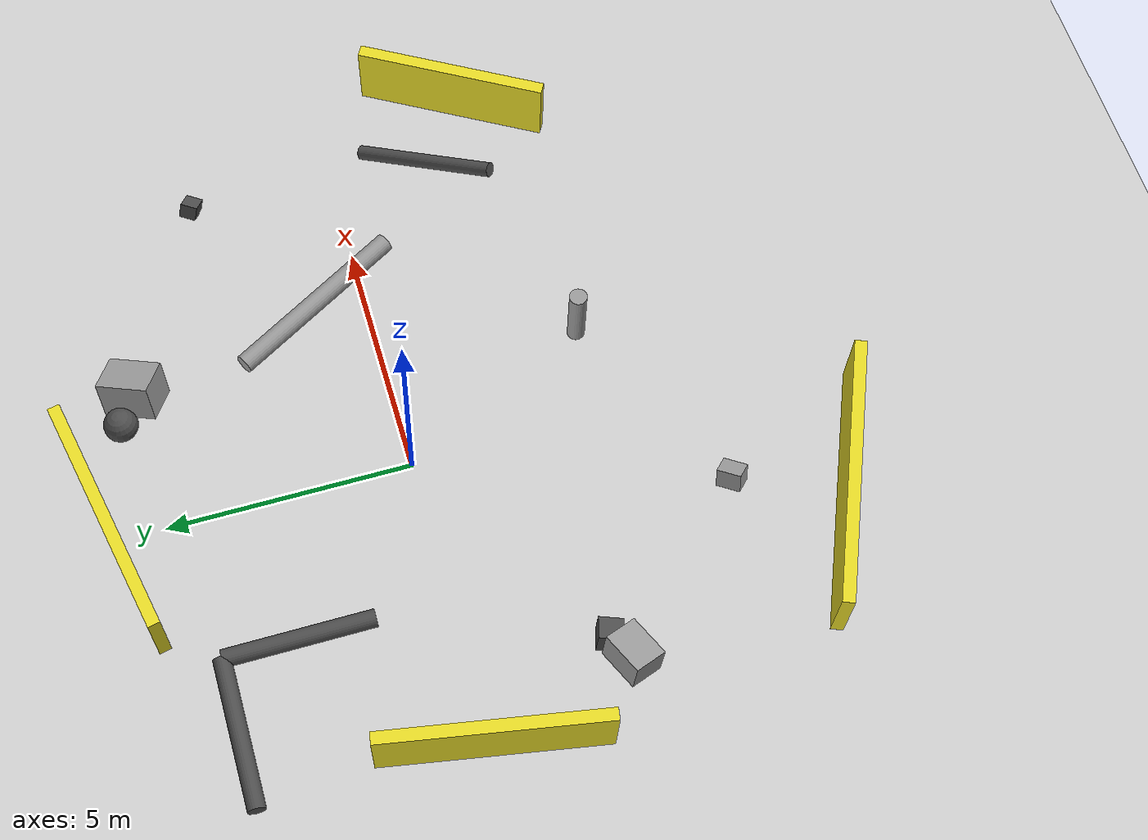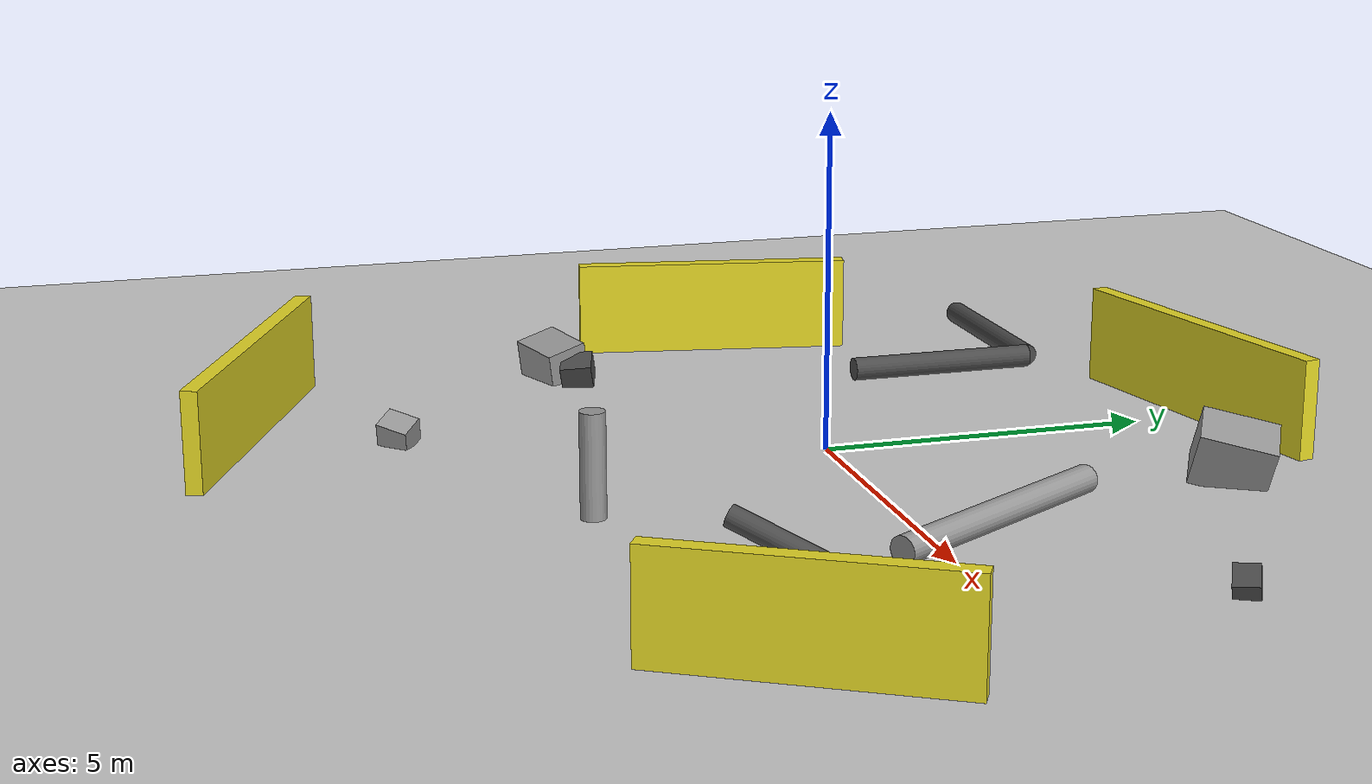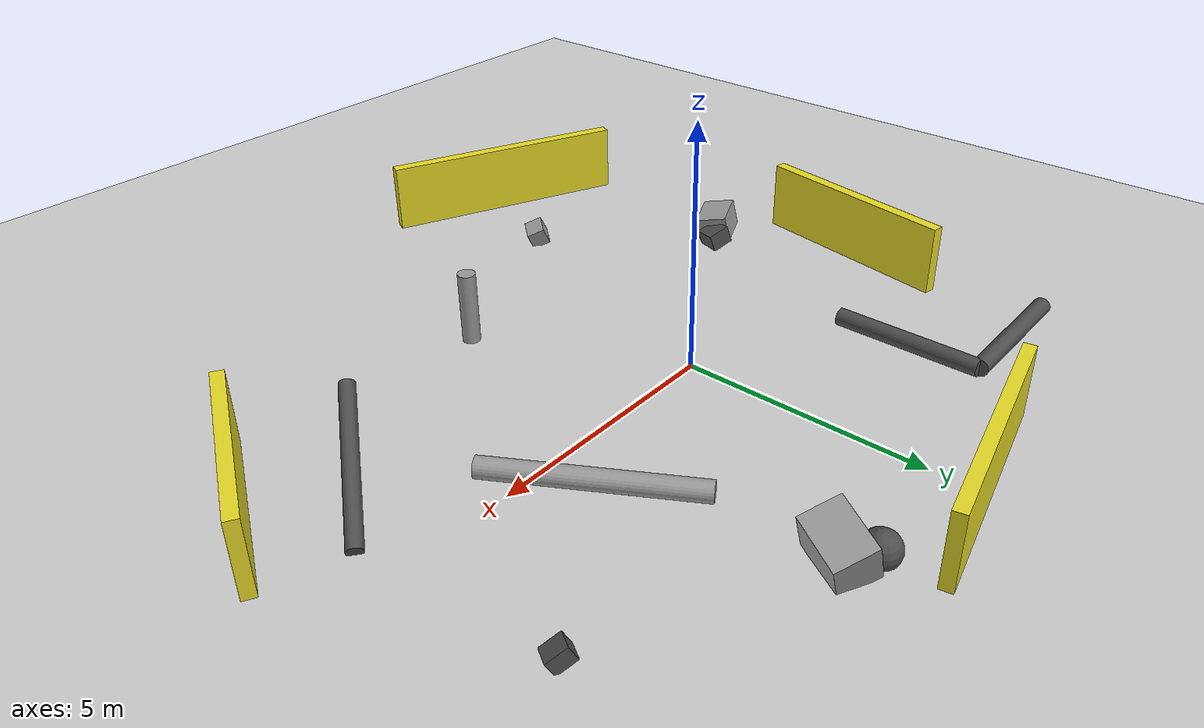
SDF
<?xml version="1.0"?>
<sdf version="1.6">
  <world name="mps_world1">

    <physics type="ode">
      <real_time_update_rate>1000</real_time_update_rate>
      <max_step_size>0.001</max_step_size>
      <real_time_factor>1</real_time_factor>
      <ode>
        <solver>
          <type>quick</type>
          <iters>150</iters>
          <precon_iters>0</precon_iters>
          <sor>1.400000</sor>
        </solver>
        <constraints>
          <cfm>0.00001</cfm>
          <erp>0.2</erp>
          <contact_max_correcting_vel>2000</contact_max_correcting_vel>
          <contact_surface_layer>0.01</contact_surface_layer>
        </constraints>
      </ode>
    </physics>

    <plugin name="gazebo_ros_state" filename="libgazebo_ros_state.so">
      <ros>
        <namespace>/gazebo</namespace>
      </ros>
      <update_rate>50.0</update_rate>
    </plugin>

    <include>
      <uri>model://sun</uri>
    </include>
    <include>
      <uri>model://ground_plane</uri>
    </include>

    <!-- ══════════════════════════════════════════════════════════
         PIPES — cylinders at varied angles
         ══════════════════════════════════════════════════════════ -->

    <!-- Long pipe, flat on ground, angled 30° -->
    <model name="pipe_1">
      <static>true</static>
      <pose>4 1 0.25 1.5708 0 0.5236</pose>
      <link name="link">
        <collision name="col"><geometry><cylinder><radius>0.2</radius><length>4.0</length></cylinder></geometry></collision>
        <visual name="vis"><geometry><cylinder><radius>0.2</radius><length>4.0</length></cylinder></geometry>
          <material><script><uri>file://media/materials/scripts/gazebo.material</uri><name>Gazebo/Grey</name></script></material>
        </visual>
      </link>
    </model>

    <!-- Pipe crossing at a steep angle, partially raised -->
    <model name="pipe_2">
      <static>true</static>
      <pose>6.5 -2 0.6 1.2 0.3 -0.7854</pose>
      <link name="link">
        <collision name="col"><geometry><cylinder><radius>0.15</radius><length>3.2</length></cylinder></geometry></collision>
        <visual name="vis"><geometry><cylinder><radius>0.15</radius><length>3.2</length></cylinder></geometry>
          <material><script><uri>file://media/materials/scripts/gazebo.material</uri><name>Gazebo/DarkGrey</name></script></material>
        </visual>
      </link>
    </model>

    <!-- Short vertical pipe stub -->
    <model name="pipe_3">
      <static>true</static>
      <pose>2 -4 0.75 0 0 0</pose>
      <link name="link">
        <collision name="col"><geometry><cylinder><radius>0.18</radius><length>1.5</length></cylinder></geometry></collision>
        <visual name="vis"><geometry><cylinder><radius>0.18</radius><length>1.5</length></cylinder></geometry>
          <material><script><uri>file://media/materials/scripts/gazebo.material</uri><name>Gazebo/Grey</name></script></material>
        </visual>
      </link>
    </model>

    <!-- Pipe elbow-like pair, perpendicular junction -->
    <model name="pipe_4a">
      <static>true</static>
      <pose>-3 3 0.3 1.5708 0 0</pose>
      <link name="link">
        <collision name="col"><geometry><cylinder><radius>0.18</radius><length>3.0</length></cylinder></geometry></collision>
        <visual name="vis"><geometry><cylinder><radius>0.18</radius><length>3.0</length></cylinder></geometry>
          <material><script><uri>file://media/materials/scripts/gazebo.material</uri><name>Gazebo/DarkGrey</name></script></material>
        </visual>
      </link>
    </model>
    <model name="pipe_4b">
      <static>true</static>
      <pose>-4.5 4.5 0.3 1.5708 0 1.5708</pose>
      <link name="link">
        <collision name="col"><geometry><cylinder><radius>0.18</radius><length>3.0</length></cylinder></geometry></collision>
        <visual name="vis"><geometry><cylinder><radius>0.18</radius><length>3.0</length></cylinder></geometry>
          <material><script><uri>file://media/materials/scripts/gazebo.material</uri><name>Gazebo/DarkGrey</name></script></material>
        </visual>
      </link>
    </model>

    <!-- ══════════════════════════════════════════════════════════
         ROCKS — clustered irregular primitives (no mesh assets needed)
         ══════════════════════════════════════════════════════════ -->

    <model name="rock_cluster_1">
      <static>true</static>
      <pose>-5 -3 0 0 0 0</pose>
      <link name="link">
        <collision name="c1"><pose>0 0 0.3 0.2 0.1 0.4</pose><geometry><box><size>0.9 0.7 0.6</size></box></geometry></collision>
        <visual name="v1"><pose>0 0 0.3 0.2 0.1 0.4</pose><geometry><box><size>0.9 0.7 0.6</size></box></geometry>
          <material><script><uri>file://media/materials/scripts/gazebo.material</uri><name>Gazebo/Grey</name></script></material>
        </visual>
        <collision name="c2"><pose>0.5 0.3 0.2 0.1 0.3 -0.3</pose><geometry><box><size>0.5 0.5 0.4</size></box></geometry></collision>
        <visual name="v2"><pose>0.5 0.3 0.2 0.1 0.3 -0.3</pose><geometry><box><size>0.5 0.5 0.4</size></box></geometry>
          <material><script><uri>file://media/materials/scripts/gazebo.material</uri><name>Gazebo/DarkGrey</name></script></material>
        </visual>
      </link>
    </model>

    <model name="rock_cluster_2">
      <static>true</static>
      <pose>3 5 0 0 0 0</pose>
      <link name="link">
        <collision name="c1"><pose>0 0 0.4 0.3 0.2 1.1</pose><geometry><box><size>1.1 0.8 0.8</size></box></geometry></collision>
        <visual name="v1"><pose>0 0 0.4 0.3 0.2 1.1</pose><geometry><box><size>1.1 0.8 0.8</size></box></geometry>
          <material><script><uri>file://media/materials/scripts/gazebo.material</uri><name>Gazebo/Grey</name></script></material>
        </visual>
        <collision name="c2"><pose>-0.6 0.4 0.15 0 0.1 0.6</pose><geometry><sphere><radius>0.35</radius></sphere></geometry></collision>
        <visual name="v2"><pose>-0.6 0.4 0.15 0 0.1 0.6</pose><geometry><sphere><radius>0.35</radius></sphere></geometry>
          <material><script><uri>file://media/materials/scripts/gazebo.material</uri><name>Gazebo/DarkGrey</name></script></material>
        </visual>
      </link>
    </model>

    <model name="rock_small_1">
      <static>true</static>
      <pose>-2 -6 0.2 0.4 0.2 0.9</pose>
      <link name="link">
        <collision name="col"><geometry><box><size>0.5 0.4 0.4</size></box></geometry></collision>
        <visual name="vis"><geometry><box><size>0.5 0.4 0.4</size></box></geometry>
          <material><script><uri>file://media/materials/scripts/gazebo.material</uri><name>Gazebo/Grey</name></script></material>
        </visual>
      </link>
    </model>

    <model name="rock_small_2">
      <static>true</static>
      <pose>7 3 0.15 0.1 0.5 -0.5</pose>
      <link name="link">
        <collision name="col"><geometry><box><size>0.4 0.35 0.3</size></box></geometry></collision>
        <visual name="vis"><geometry><box><size>0.4 0.35 0.3</size></box></geometry>
          <material><script><uri>file://media/materials/scripts/gazebo.material</uri><name>Gazebo/DarkGrey</name></script></material>
        </visual>
      </link>
    </model>

    <!-- ══════════════════════════════════════════════════════════
         WALLS — flat panels at varied angles (loose corridor)
         ══════════════════════════════════════════════════════════ -->

    <model name="wall_1">
      <static>true</static>
      <pose>0 6 0.75 0 0 0.2</pose>
      <link name="link">
        <collision name="col"><geometry><box><size>5.0 0.25 1.5</size></box></geometry></collision>
        <visual name="vis"><geometry><box><size>5.0 0.25 1.5</size></box></geometry>
          <material><script><uri>file://media/materials/scripts/gazebo.material</uri><name>Gazebo/Yellow</name></script></material>
        </visual>
      </link>
    </model>

    <model name="wall_2">
      <static>true</static>
      <pose>-6 0 0.75 0 0 1.396</pose>
      <link name="link">
        <collision name="col"><geometry><box><size>4.5 0.25 1.5</size></box></geometry></collision>
        <visual name="vis"><geometry><box><size>4.5 0.25 1.5</size></box></geometry>
          <material><script><uri>file://media/materials/scripts/gazebo.material</uri><name>Gazebo/Yellow</name></script></material>
        </visual>
      </link>
    </model>

    <model name="wall_3">
      <static>true</static>
      <pose>8 -3 0.75 0 0 1.0472</pose>
      <link name="link">
        <collision name="col"><geometry><box><size>4.0 0.25 1.5</size></box></geometry></collision>
        <visual name="vis"><geometry><box><size>4.0 0.25 1.5</size></box></geometry>
          <material><script><uri>file://media/materials/scripts/gazebo.material</uri><name>Gazebo/Yellow</name></script></material>
        </visual>
      </link>
    </model>

    <model name="wall_4">
      <static>true</static>
      <pose>-3 -8 0.75 0 0 -0.4</pose>
      <link name="link">
        <collision name="col"><geometry><box><size>5.5 0.25 1.5</size></box></geometry></collision>
        <visual name="vis"><geometry><box><size>5.5 0.25 1.5</size></box></geometry>
          <material><script><uri>file://media/materials/scripts/gazebo.material</uri><name>Gazebo/Yellow</name></script></material>
        </visual>
      </link>
    </model>

    <!-- GUI camera start view -->
    <gui>
      <camera name="user_camera">
        <pose>-14 -14 10 0 0.5 0.78</pose>
      </camera>
    </gui>

  </world>
</sdf>
